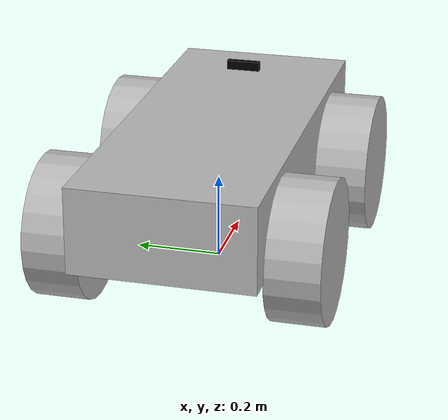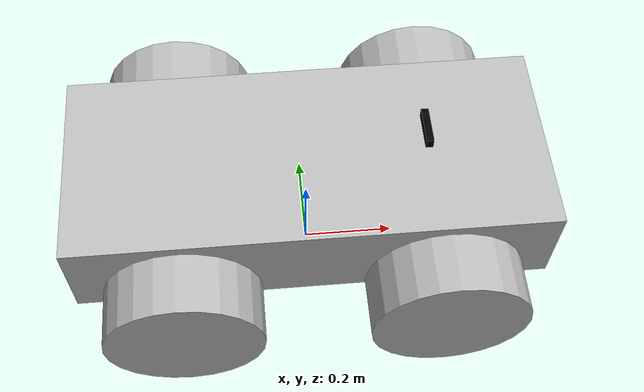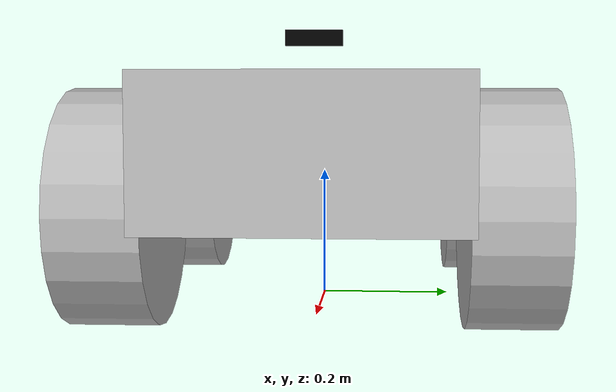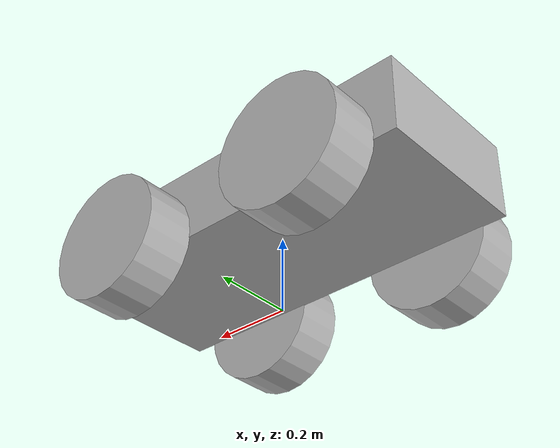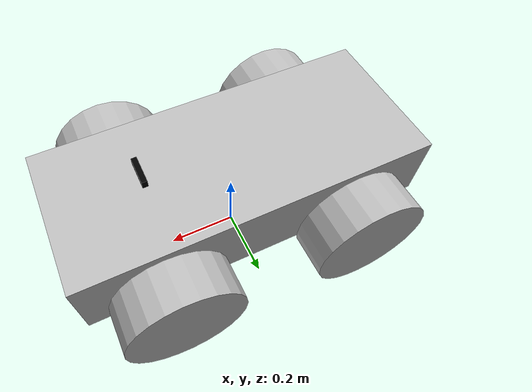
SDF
<?xml version="1.0" ?>
<sdf version="1.5">
  <model name="basic_mobile_bot">
  <static>false</static>

  <description>
      The main body (chassis) of the Husky robot.
    </description>
    <link name='chassis'>
      <pose>0 0 .25 0 0 0</pose>

      <description>
        The collision hitbox for the Husky.
      </description>
      <collision name='collision'>
        <geometry>
          <box>
            <size>.990 .420 .200</size>
          </box>
        </geometry>
      </collision>

      <description>
        The visual body of the Husky.
      </description>
      <visual name='visual'>
        <geometry>
          <box>
            <size>.990 .420 .200</size>
          </box>
        </geometry>
      </visual>
    </link>

    <description>
    Husky's front left wheel
    </description>
    <link name="front_left_wheel">
      <pose>0.272 0.270 0.165 0 1.5707 1.5707</pose>
      <collision name="collision">
        <geometry>
          <cylinder>
            <radius>.165</radius>
            <length>.125</length>
          </cylinder>
        </geometry>
      </collision>
      <visual name="visual">
        <geometry>
          <cylinder>
            <radius>.165</radius>
            <length>.125</length>
          </cylinder>
        </geometry>
      </visual>
    </link>

    <description>
    Husky's front right wheel
    </description>
    <link name="front_right_wheel">
      <pose>0.272 -0.270 0.165 0 1.5707 1.5707</pose>
      <collision name="collision">
        <geometry>
          <cylinder>
            <radius>.165</radius>
            <length>.125</length>
          </cylinder>
        </geometry>
      </collision>
      <visual name="visual">
        <geometry>
          <cylinder>
            <radius>.165</radius>
            <length>.125</length>
          </cylinder>
        </geometry>
      </visual>
    </link>

    <description>
    Husky's rear left wheel
    </description>
    <link name="rear_left_wheel">
      <pose>-0.272 0.270 0.165 0 1.5707 1.5707</pose>
      <collision name="collision">
        <geometry>
          <cylinder>
            <radius>.165</radius>
            <length>.125</length>
          </cylinder>
        </geometry>
      </collision>
      <visual name="visual">
        <geometry>
          <cylinder>
            <radius>.165</radius>
            <length>.125</length>
          </cylinder>
        </geometry>
      </visual>
    </link>

    <description>
    Husky's rear right wheel
    </description>
    <link name="rear_right_wheel">
      <pose>-0.272 -0.270 0.165 0 1.5707 1.5707</pose>
      <collision name="collision">
        <geometry>
          <cylinder>
            <radius>.165</radius>
            <length>.125</length>
          </cylinder>
        </geometry>
      </collision>
      <visual name="visual">
        <geometry>
          <cylinder>
            <radius>.165</radius>
            <length>.125</length>
          </cylinder>
        </geometry>
      </visual>
    </link>

    <description>
    Front left wheel hinge
    </description>
    <joint type="revolute" name="front_left_wheel_hinge">
      <pose>0 0 0.06 0 0 0</pose>
      <child>front_left_wheel</child>
      <parent>chassis</parent>
      <axis>
        <xyz>0 0 1</xyz>
      </axis>
    </joint>

    <description>
    Front right wheel hinge
    </description>
    <joint type="revolute" name="front_right_wheel_hinge">
      <pose>0 0 -0.06 0 0 0</pose>
      <child>front_right_wheel</child>
      <parent>chassis</parent>
      <axis>
        <xyz>0 0 1</xyz>
      </axis>
    </joint>

    <description>
    Rear left wheel hinge
    </description>
    <joint type="fixed" name="rear_left_wheel_hinge">
      <pose>0 0 0.06 0 0 0</pose>
      <child>rear_left_wheel</child>
      <parent>chassis</parent>
      <axis>
        <xyz>0 1 0</xyz>
      </axis>
    </joint>

    <description>
    Rear right wheel hinge
    </description>
    <joint type="fixed" name="rear_right_wheel_hinge">
      <pose>0 0 -0.06 0 0 0</pose>
      <child>rear_right_wheel</child>
      <parent>chassis</parent>
      <axis>
        <xyz>0 1 0</xyz>
      </axis>
    </joint>

<!-- *********************** DEPTH CAMERA ******************************  -->
 <description>
    Husky's camera sensor
</description>
<link name="camera_depth_frame">
    <pose>0.25 0 0.4 -1.5708 0 -1.5708</pose>
</link>

<link name="cameralink">
  <pose>0.25 0 0.4 0 0 0</pose>

  <visual name="camera_visual">
    <pose>-0.005 0 0 0 0 0</pose>
    <geometry>
      <box>
        <size>0.015 0.08 0.022</size>
      </box>
    </geometry>
    <material>
      <ambient>0 0 0 1.0</ambient>
      <diffuse>0 0 0 1.0</diffuse>
      <specular>0.0 0.0 0.0 1.0</specular>
      <emissive>0.0 0.0 0.0 1.0</emissive>
    </material>
  </visual>

  <sensor name="depth_camera" type="camera">
    <always_on>true</always_on>
    <visualize>false</visualize>
    <update_rate>5</update_rate>
    <camera name="camera">
      <horizontal_fov>1.02974</horizontal_fov>
      <image>
        <width>640</width>
        <height>480</height>
        <format>R8G8B8</format>
      </image>
      <clip>
        <near>0.02</near>
        <far>10</far>
      </clip>
      <noise>
        <type>gaussian</type>
        <!-- Noise is sampled independently per pixel on each frame.
             That pixel's noise value is added to each of its color
              channels, which at that point lie in the range [0,1]. -->
        <mean>0.0</mean>
        <stddev>0.007</stddev>
      </noise>
    </camera>
    <plugin name="depth_camera_controller" filename="libgazebo_ros_camera.so">
      <camera_name>depth_camera</camera_name>
      <frame_name>camera_depth_frame</frame_name>
      <hack_baseline>0</hack_baseline>
      <min_depth>0.001</min_depth>
    </plugin>
  </sensor>
</link>
    <joint name="camera_joint" type="fixed">
      <child>cameralink</child>
      <parent>chassis</parent>
    </joint>

  <!-- *********************** IMU SENSOR SETUP **************************  -->
  <link name="imu_link">
    <gravity>true</gravity>
    <sensor name="bmb_imu" type="imu">
      <always_on>true</always_on>
      <update_rate>100</update_rate>
      <visualize>true</visualize>
      <imu>
        <orientation>
          <x>
            <noise type="gaussian">
              <mean>0.0</mean>
              <stddev>2e-3</stddev>
            </noise>
          </x>
          <y>
            <noise type="gaussian">
              <mean>0.0</mean>
              <stddev>2e-3</stddev>
            </noise>
          </y>
          <z>
            <noise type="gaussian">
              <mean>0.0</mean>
              <stddev>2e-3</stddev>
            </noise>
          </z>
        </orientation>
        <angular_velocity>
          <x>
            <noise type="gaussian">
              <mean>0.0</mean>
              <stddev>2e-4</stddev>
            </noise>
          </x>
          <y>
            <noise type="gaussian">
              <mean>0.0</mean>
              <stddev>2e-4</stddev>
            </noise>
          </y>
          <z>
            <noise type="gaussian">
              <mean>0.0</mean>
              <stddev>2e-4</stddev>
            </noise>
          </z>
        </angular_velocity>
        <linear_acceleration>
          <x>
            <noise type="gaussian">
              <mean>0.0</mean>
              <stddev>1.7e-2</stddev>
            </noise>
          </x>
          <y>
            <noise type="gaussian">
              <mean>0.0</mean>
              <stddev>1.7e-2</stddev>
            </noise>
          </y>
          <z>
            <noise type="gaussian">
              <mean>0.0</mean>
              <stddev>1.7e-2</stddev>
            </noise>
          </z>
        </linear_acceleration>
      </imu>
      <plugin name="basic_mobile_bot_imu" filename="libgazebo_ros_imu_sensor.so">
        <initial_orientation_as_reference>false</initial_orientation_as_reference>
        <frame_name>imu_link</frame_name>
        <ros>
          <namespace>/imu</namespace>
          <remapping>~/out:=data</remapping>
        </ros>
      </plugin>
    </sensor>
  </link>

  <!-- *********************** GPS SETUP *********************************  -->
  <link name="gps_link">
    <sensor name="bmb_gps" type="gps">
      <always_on>true</always_on>
      <update_rate>10.0</update_rate>
      <gps>
        <position_sensing>
          <horizontal>
            <noise type="gaussian">
              <mean>0.0</mean>
              <stddev>1e-2</stddev>
            </noise>
          </horizontal>
          <vertical>
            <noise type="gaussian">
              <mean>0.0</mean>
              <stddev>1</stddev>
            </noise>
          </vertical>
        </position_sensing>
      </gps>
      <plugin name="basic_mobile_bot_gps" filename="libgazebo_ros_gps_sensor.so">
        <ros>
          <remapping>~/out:=gps/fix</remapping>
        </ros>
      </plugin>
    </sensor>
  </link>

  <joint name="imu_joint" type="fixed">
    <parent>base_link</parent>
    <child>imu_link</child>
    <pose>0 0 0 0 0 0</pose>
  </joint>

  <joint name="gps_joint" type="fixed">
    <parent>base_link</parent>
    <child>gps_link</child>
    <pose>0 0 0 0 0 0</pose>
  </joint>

 <!-- *********************** WHEEL ODOMETRY ***************************    -->

 <plugin name="basic_mobile_bot_diff_drive" filename="libgazebo_ros_diff_drive.so">

    <update_rate>30</update_rate>

    <!-- wheels -->
    <left_joint>front_left_wheel_hinge</left_joint>
    <right_joint>front_right_wheel_hinge</right_joint>

    <!-- kinematics -->
    <wheel_separation>0.52</wheel_separation>
    <wheel_diameter>0.28</wheel_diameter>

    <!-- limits -->
    <max_wheel_torque>20</max_wheel_torque>
    <max_wheel_acceleration>1.0</max_wheel_acceleration>

    <!-- Receive velocity commands on this ROS topic -->
    <command_topic>cmd_vel</command_topic>

    <!-- output -->
    <!-- When false, publish no wheel odometry data to a ROS topic -->
    <publish_odom>true</publish_odom>

    <!-- When true, publish coordinate transform from odom to base_footprint -->
    <!-- I usually use the robot_localization package to publish this transform -->
    <publish_odom_tf>false</publish_odom_tf>

    <!-- When true, publish coordinate transform from base_link to the wheels -->
    <!-- The robot_state_publisher package is often used to publish this transform -->
    <publish_wheel_tf>false</publish_wheel_tf>

    <odometry_topic>odom</odometry_topic>
    <odometry_frame>odom</odometry_frame>
    <robot_base_frame>base_footprint</robot_base_frame>

    <!-- Odometry source, 0 for ENCODER, 1 for WORLD, defaults to WORLD -->
    <odometry_source>0</odometry_source>

    <!-- Change the ROS topic we will publish the odometry data to -->
    <ros>
      <remapping>odom:=wheel/odometry</remapping>
    </ros>

  </plugin>
 <!-- *********************** JOINT STATE PUBLISHER *********************   -->

  <plugin name="basic_mobile_bot_joint_state" filename="libgazebo_ros_joint_state_publisher.so">
    <ros>
      <remapping>~/out:=joint_states</remapping>
    </ros>
    <update_rate>30</update_rate>
    <joint_name>front_left_wheel_hinge</joint_name>
    <joint_name>front_right_wheel_hinge</joint_name>
    <joint_name>rear_left_wheel_hinge</joint_name>
    <joint_name>rear_left_wheel_hinge</joint_name>
  </plugin>

  </model>
</sdf>
